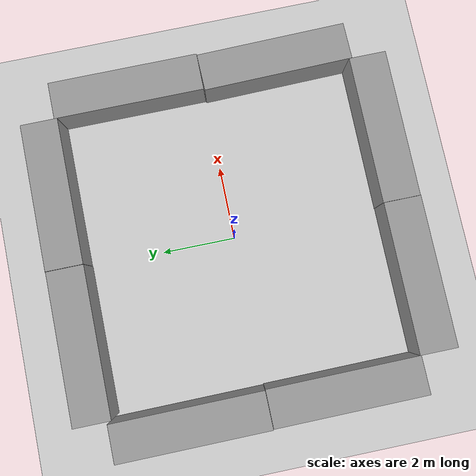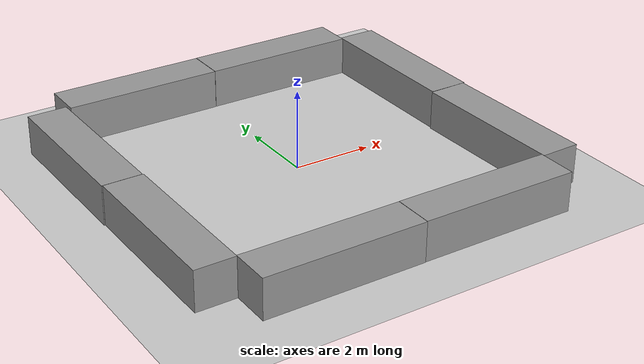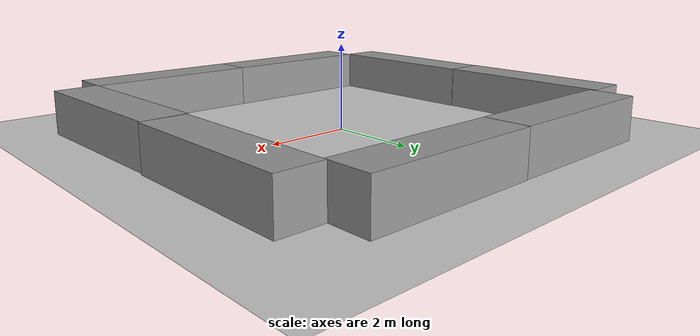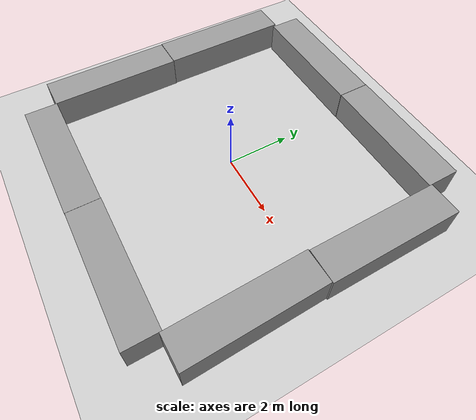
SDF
<sdf version="1.7">
 <world name="default">
  <light name="sun" type="directional">
   <cast_shadows>0</cast_shadows>
   <pose>0 0 10 0 -0 0</pose>
   <diffuse>0.8 0.8 0.8 1</diffuse>
   <specular>0.2 0.2 0.2 1</specular>
   <attenuation>
    <range>1000</range>
    <constant>0.9</constant>
    <linear>0.01</linear>
    <quadratic>0.001</quadratic>
   </attenuation>
   <direction>-0.5 0.1 -0.9</direction>
   <spot><inner_angle>0</inner_angle><outer_angle>0</outer_angle><falloff>0</falloff></spot>
  </light>
  <model name="ground_plane">
   <static>1</static>
   <link name="link">
    <collision name="collision">
     <geometry><plane><normal>0 0 1</normal><size>100 100</size></plane></geometry>
     <surface><friction><ode><mu>100</mu><mu2>50</mu2></ode></friction></surface>
    </collision>
    <visual name="visual">
     <cast_shadows>0</cast_shadows>
     <geometry><plane><normal>0 0 1</normal><size>100 100</size></plane></geometry>
     <material>
      <script><uri>file://media/materials/scripts/gazebo.material</uri><name>Gazebo/Grey</name></script>
     </material>
    </visual>
   </link>
  </model>
  <gravity>0 0 -9.8</gravity>
  <scene><ambient>0.4 0.4 0.4 1</ambient><background>0.7 0.7 0.7 1</background><shadows>1</shadows></scene>
  <magnetic_field>6e-06 2.3e-05 -4.2e-05</magnetic_field>
  <atmosphere type="adiabatic"/>
  <physics type="ode">
   <max_step_size>0.001</max_step_size>
   <real_time_factor>1</real_time_factor>
   <real_time_update_rate>1000</real_time_update_rate>
  </physics>
  <audio><device>default</device></audio>
  <spherical_coordinates>
   <surface_model>EARTH_WGS84</surface_model>
   <latitude_deg>0</latitude_deg>
   <longitude_deg>0</longitude_deg>
   <elevation>0</elevation>
   <heading_deg>0</heading_deg>
  </spherical_coordinates>
  <model name="unit_box">
   <pose>4.50273 -2.02942 0.5 -0 1e-06 0.019425</pose>
   <link name="link">
    <inertial>
     <mass>1</mass>
     <inertia>
      <ixx>0.166667</ixx>
      <ixy>0</ixy>
      <ixz>0</ixz>
      <iyy>0.166667</iyy>
      <iyz>0</iyz>
      <izz>0.166667</izz>
     </inertia>
    </inertial>
    <collision name="collision"><geometry><box><size>1 4.0622 1</size></box></geometry></collision>
    <visual name="visual">
     <geometry><box><size>1 4.0622 1</size></box></geometry>
     <material>
      <script><name>Gazebo/Grey</name><uri>file://media/materials/scripts/gazebo.material</uri></script>
     </material>
    </visual>
   </link>
  </model>
  <model name="unit_box_clone">
   <pose>4.49999 2.04488 0.499196 0.000396 -0 8.7e-05</pose>
   <link name="link">
    <inertial>
     <mass>1</mass>
     <inertia>
      <ixx>0.166667</ixx>
      <ixy>0</ixy>
      <ixz>0</ixz>
      <iyy>0.166667</iyy>
      <iyz>0</iyz>
      <izz>0.166667</izz>
     </inertia>
    </inertial>
    <collision name="collision"><geometry><box><size>1 4.0622 1</size></box></geometry></collision>
    <visual name="visual">
     <geometry><box><size>1 4.0622 1</size></box></geometry>
     <material>
      <script><name>Gazebo/Grey</name><uri>file://media/materials/scripts/gazebo.material</uri></script>
     </material>
    </visual>
   </link>
  </model>
  <model name="unit_box_0">
   <pose>2.01619 4.49153 0.499994 -4e-06 2e-06 0.000139</pose>
   <link name="link">
    <inertial>
     <mass>1</mass>
     <inertia>
      <ixx>0.166667</ixx>
      <ixy>0</ixy>
      <ixz>0</ixz>
      <iyy>0.166667</iyy>
      <iyz>0</iyz>
      <izz>0.166667</izz>
     </inertia>
    </inertial>
    <collision name="collision"><geometry><box><size>3.96686 1 1</size></box></geometry></collision>
    <visual name="visual">
     <geometry><box><size>3.96686 1 1</size></box></geometry>
     <material>
      <script><name>Gazebo/Grey</name><uri>file://media/materials/scripts/gazebo.material</uri></script>
     </material>
    </visual>
   </link>
  </model>
  <model name="unit_box_0_clone">
   <pose>-1.98342 4.48227 0.499239 0 -0.000379 0.000146</pose>
   <link name="link">
    <inertial>
     <mass>1</mass>
     <inertia>
      <ixx>0.166667</ixx>
      <ixy>0</ixy>
      <ixz>0</ixz>
      <iyy>0.166667</iyy>
      <iyz>0</iyz>
      <izz>0.166667</izz>
     </inertia>
    </inertial>
    <collision name="collision"><geometry><box><size>4.01582 1 1</size></box></geometry></collision>
    <visual name="visual">
     <geometry><box><size>4.01582 1 1</size></box></geometry>
     <material>
      <script><name>Gazebo/Grey</name><uri>file://media/materials/scripts/gazebo.material</uri></script>
     </material>
    </visual>
   </link>
  </model>
  <model name="unit_box_0_clone_clone">
   <pose>2.03196 -4.48804 0.499239 0 0.000379 -0.001347</pose>
   <link name="link">
    <inertial>
     <mass>1</mass>
     <inertia>
      <ixx>0.166667</ixx>
      <ixy>0</ixy>
      <ixz>0</ixz>
      <iyy>0.166667</iyy>
      <iyz>0</iyz>
      <izz>0.166667</izz>
     </inertia>
    </inertial>
    <collision name="collision"><geometry><box><size>4.01582 1 1</size></box></geometry></collision>
    <visual name="visual">
     <geometry><box><size>4.01582 1 1</size></box></geometry>
     <material>
      <script><name>Gazebo/Grey</name><uri>file://media/materials/scripts/gazebo.material</uri></script>
     </material>
    </visual>
   </link>
  </model>
  <model name="unit_box_clone_0">
   <pose>-4.50822 -1.99619 0.499997 0 -6e-06 0.005776</pose>
   <link name="link">
    <inertial>
     <mass>1</mass>
     <inertia>
      <ixx>0.166667</ixx>
      <ixy>0</ixy>
      <ixz>0</ixz>
      <iyy>0.166667</iyy>
      <iyz>0</iyz>
      <izz>0.166667</izz>
     </inertia>
    </inertial>
    <collision name="collision"><geometry><box><size>1 4.0622 1</size></box></geometry></collision>
    <visual name="visual">
     <geometry><box><size>1 4.0622 1</size></box></geometry>
     <material>
      <script><name>Gazebo/Grey</name><uri>file://media/materials/scripts/gazebo.material</uri></script>
     </material>
    </visual>
   </link>
  </model>
  <model name="unit_box_clone_1">
   <pose>-4.54977 2.07268 0.499196 -0.000396 -0 0.004492</pose>
   <link name="link">
    <inertial>
     <mass>1</mass>
     <inertia>
      <ixx>0.166667</ixx>
      <ixy>0</ixy>
      <ixz>0</ixz>
      <iyy>0.166667</iyy>
      <iyz>0</iyz>
      <izz>0.166667</izz>
     </inertia>
    </inertial>
    <collision name="collision"><geometry><box><size>1 4.0622 1</size></box></geometry></collision>
    <visual name="visual">
     <geometry><box><size>1 4.0622 1</size></box></geometry>
     <material>
      <script><name>Gazebo/Grey</name><uri>file://media/materials/scripts/gazebo.material</uri></script>
     </material>
    </visual>
   </link>
  </model>
  <model name="unit_box_0_clone_clone_clone">
   <pose>-1.98762 -4.49475 0.499239 -0 0.000379 0.000418</pose>
   <link name="link">
    <inertial>
     <mass>1</mass>
     <inertia>
      <ixx>0.166667</ixx>
      <ixy>0</ixy>
      <ixz>0</ixz>
      <iyy>0.166667</iyy>
      <iyz>0</iyz>
      <izz>0.166667</izz>
     </inertia>
    </inertial>
    <collision name="collision"><geometry><box><size>4.01582 1 1</size></box></geometry></collision>
    <visual name="visual">
     <geometry><box><size>4.01582 1 1</size></box></geometry>
     <material>
      <script><name>Gazebo/Grey</name><uri>file://media/materials/scripts/gazebo.material</uri></script>
     </material>
    </visual>
   </link>
  </model>
 </world>
</sdf>
